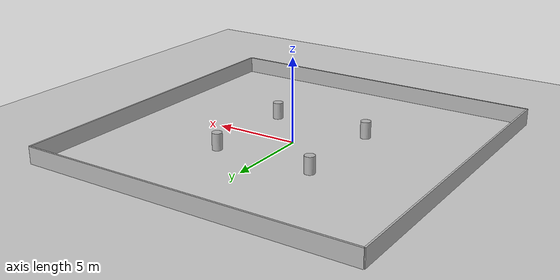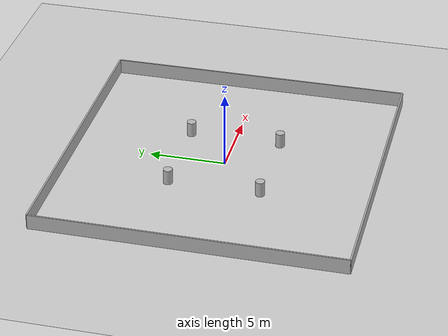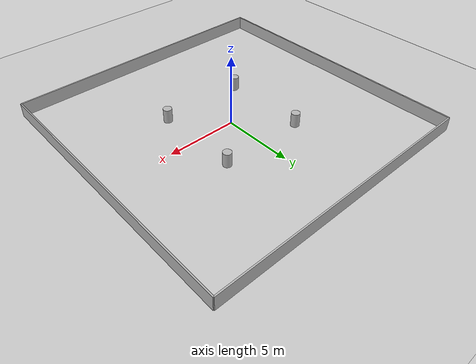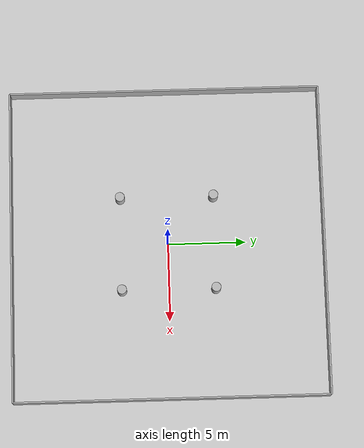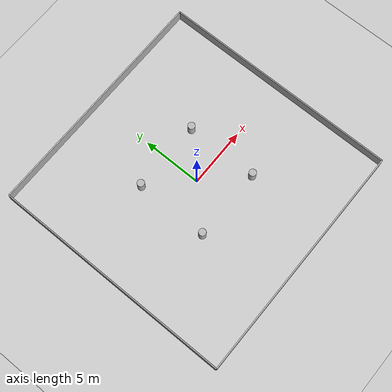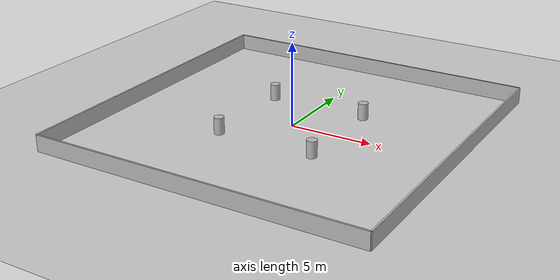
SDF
<?xml version="1.0" ?>
<sdf version="1.6">
  <world name="crowd">
    <physics type="ode">
      <max_step_size>0.01</max_step_size>
      <real_time_factor>1</real_time_factor>
      <real_time_update_rate>100</real_time_update_rate>
    </physics>
    <gui><camera name="user_camera"><pose>0 -18 14 0 0.8 1.57</pose></camera></gui>

    <include><uri>model://sun</uri></include>
    <include><uri>model://ground_plane</uri></include>

    <!-- 20 m x 20 m open hall surrounded by walls. HuNavSim injects ~10 SFM
         actors at runtime. -->
    <model name="hall_n">
      <static>true</static><pose>0 10 0.5 0 0 0</pose>
      <link name="link">
        <collision name="c"><geometry><box><size>20 0.1 1.0</size></box></geometry></collision>
        <visual name="v"><geometry><box><size>20 0.1 1.0</size></box></geometry></visual>
      </link>
    </model>
    <model name="hall_s">
      <static>true</static><pose>0 -10 0.5 0 0 0</pose>
      <link name="link">
        <collision name="c"><geometry><box><size>20 0.1 1.0</size></box></geometry></collision>
        <visual name="v"><geometry><box><size>20 0.1 1.0</size></box></geometry></visual>
      </link>
    </model>
    <model name="hall_e">
      <static>true</static><pose>10 0 0.5 0 0 0</pose>
      <link name="link">
        <collision name="c"><geometry><box><size>0.1 20 1.0</size></box></geometry></collision>
        <visual name="v"><geometry><box><size>0.1 20 1.0</size></box></geometry></visual>
      </link>
    </model>
    <model name="hall_w">
      <static>true</static><pose>-10 0 0.5 0 0 0</pose>
      <link name="link">
        <collision name="c"><geometry><box><size>0.1 20 1.0</size></box></geometry></collision>
        <visual name="v"><geometry><box><size>0.1 20 1.0</size></box></geometry></visual>
      </link>
    </model>

    <!-- Four pillar obstacles in the middle -->
    <model name="pillar_1">
      <static>true</static><pose> 3  3 0.5 0 0 0</pose>
      <link name="link">
        <collision name="c"><geometry><cylinder><radius>0.3</radius><length>1.0</length></cylinder></geometry></collision>
        <visual name="v"><geometry><cylinder><radius>0.3</radius><length>1.0</length></cylinder></geometry></visual>
      </link>
    </model>
    <model name="pillar_2">
      <static>true</static><pose>-3  3 0.5 0 0 0</pose>
      <link name="link">
        <collision name="c"><geometry><cylinder><radius>0.3</radius><length>1.0</length></cylinder></geometry></collision>
        <visual name="v"><geometry><cylinder><radius>0.3</radius><length>1.0</length></cylinder></geometry></visual>
      </link>
    </model>
    <model name="pillar_3">
      <static>true</static><pose> 3 -3 0.5 0 0 0</pose>
      <link name="link">
        <collision name="c"><geometry><cylinder><radius>0.3</radius><length>1.0</length></cylinder></geometry></collision>
        <visual name="v"><geometry><cylinder><radius>0.3</radius><length>1.0</length></cylinder></geometry></visual>
      </link>
    </model>
    <model name="pillar_4">
      <static>true</static><pose>-3 -3 0.5 0 0 0</pose>
      <link name="link">
        <collision name="c"><geometry><cylinder><radius>0.3</radius><length>1.0</length></cylinder></geometry></collision>
        <visual name="v"><geometry><cylinder><radius>0.3</radius><length>1.0</length></cylinder></geometry></visual>
      </link>
    </model>

  </world>
</sdf>
